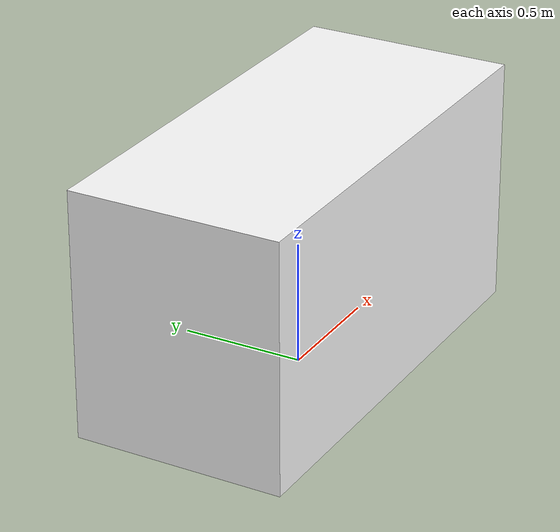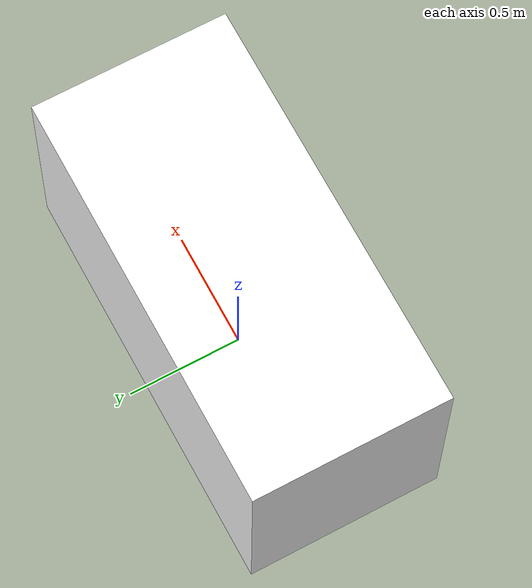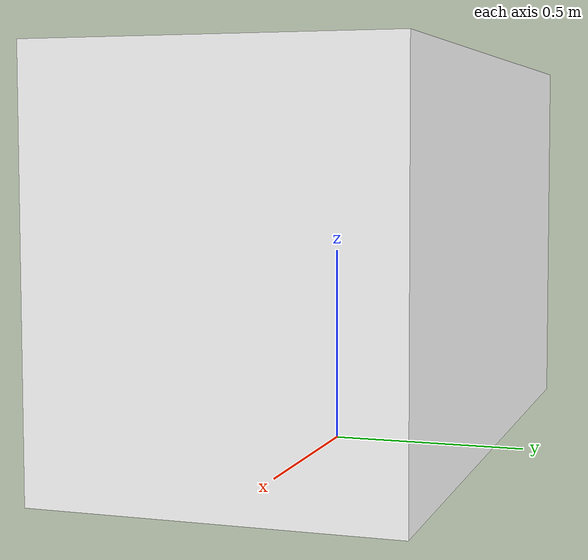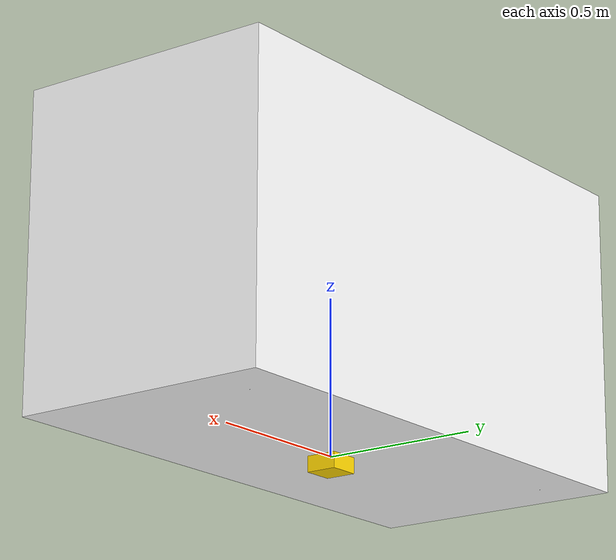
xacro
<?xml version="1.0" ?>
<robot xmlns:xacro="http://www.ros.org/wiki/xacro">

<xacro:include filename="$(find thanxe_new_description)/urdf/materials.xacro" />
<xacro:include filename="$(find thanxe_new_description)/urdf/inertial_macros.xacro" />

<link name="base_footprint"></link>
<joint name="base_footprint_joint" type="fixed">
    <parent link="base_footprint"/><child link="base_link"/><origin xyz="0 0 0" rpy="0 0 0"/>
</joint>

<link name="base_link">
  <xacro:inertial_box mass="150" x="1.800" y="0.85" z="1.0"><origin xyz="0 0 0.35" rpy="0 0 0"/></xacro:inertial_box>
  <visual>
    <origin xyz="0 0 0.5" rpy="0 0 0"/>
    <geometry><box size="1.8 0.85 1.0" /></geometry>
    <material name="white"/>
  </visual>
  <collision>
    <origin xyz="0 0 0.5" rpy="0 0 0"/>
    <geometry><box size="1.8 0.85 1.0" /></geometry>
  </collision>
</link>

<xacro:macro name="revolute_link" params="name xyz">
  <link name="${name}">
    <visual>
      <origin xyz="${xyz}" rpy="0 0 0"/>
      <geometry><box size="0.1 0.1 0.1" /></geometry>
      <material name="gold"/>
    </visual>
  </link>
</xacro:macro>

<xacro:revolute_link name="Revolute1_1" xyz="-0.738 -0.255 -0.355"/>
<xacro:revolute_link name="Revolute2_1" xyz="-0.738 0.255 -0.355"/>
<xacro:revolute_link name="Revolute3_1" xyz="0.738 -0.255 -0.355"/>
<xacro:revolute_link name="Revolute4_1" xyz="0.738 0.255 -0.355"/>

<xacro:macro name="wheel_link" params="name">
    <link name="${name}">
      <visual>
        <origin xyz="0 0 0" rpy="1.57 0 0"/>
        <geometry><cylinder radius="0.125" length="0.05"/></geometry>
        <material name="black"/>
      </visual>
      <collision>
        <origin xyz="0 0 0" rpy="1.57 0 0"/>
        <geometry><cylinder radius="0.125" length="0.05"/></geometry>
      </collision>
    </link>
</xacro:macro>

<xacro:wheel_link name="Wheel1_1"/>
<xacro:wheel_link name="Wheel2_1"/>
<xacro:wheel_link name="Wheel3_1"/>
<xacro:wheel_link name="Wheel4_1"/>

<joint name="Revolute1_to_base_link" type="continuous"><origin xyz="0.738 0.255 0.355" rpy="0 0 0"/><parent link="base_link"/><child link="Revolute1_1"/><axis xyz="0 0 1"/></joint>
<joint name="Revolute2_to_base_link" type="continuous"><origin xyz="0.738 -0.255 0.355" rpy="0 0 0"/><parent link="base_link"/><child link="Revolute2_1"/><axis xyz="0 0 1"/></joint>
<joint name="Revolute3_to_base_link" type="continuous"><origin xyz="-0.738 0.255 0.355" rpy="0 0 0"/><parent link="base_link"/><child link="Revolute3_1"/><axis xyz="0 0 1"/></joint>
<joint name="Revolute4_to_base_link" type="continuous"><origin xyz="-0.738 -0.255 0.355" rpy="0 0 0"/><parent link="base_link"/><child link="Revolute4_1"/><axis xyz="0 0 1"/></joint>
<joint name="Wheel1_to_Revolute1" type="continuous"><origin xyz="0 0 -0.23" rpy="0 0 0"/><parent link="Revolute1_1"/><child link="Wheel1_1"/><axis xyz="0 1 0"/></joint>
<joint name="Wheel2_to_Revolute2" type="continuous"><origin xyz="0 0 -0.23" rpy="0 0 0"/><parent link="Revolute2_1"/><child link="Wheel2_1"/><axis xyz="0 1 0"/></joint>
<joint name="Wheel3_to_Revolute3" type="continuous"><origin xyz="0 0 -0.23" rpy="0 0 0"/><parent link="Revolute3_1"/><child link="Wheel3_1"/><axis xyz="0 1 0"/></joint>
<joint name="Wheel4_to_Revolute4" type="continuous"><origin xyz="0 0 -0.23" rpy="0 0 0"/><parent link="Revolute4_1"/><child link="Wheel4_1"/><axis xyz="0 1 0"/></joint>

</robot>

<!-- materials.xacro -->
<robot xmlns:xacro="http://www.ros.org/wiki/xacro" >

<material name="silver">
  <color rgba="0.700 0.700 0.700 1.000"/>
</material>

<material name="white">
  <color rgba="1.0 1.0 1.0 1.0"/>
</material>

<material name="black">
  <color rgba="0.0 0.0 0.0 1.0"/>
</material>

<material name="dark_grey">
  <color rgba="0.2 0.2 0.2 1.0"/>
</material>

<material name="steel">
  <color rgba="0.5 0.5 0.5 1.0"/>
</material>

<material name="gold">
  <color rgba="1.0 0.84 0.0 1.0"/>
</material>

<material name="orange">
  <color rgba="1.0 0.42 0.04 1.0"/>
</material>

<material name="blue">
  <color rgba="0.0 0.0 0.8 1.0"/>
</material>

<material name="midnight_blue">
  <color rgba="0.1 0.1 0.4 1.0"/>
</material>

<material name="red">
  <color rgba="0.8 0.0 0.0 1.0"/>
</material>

</robot>
